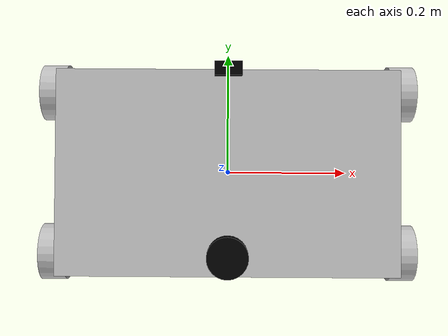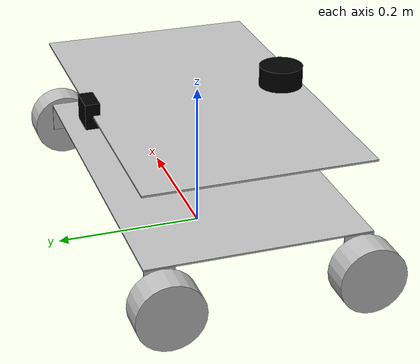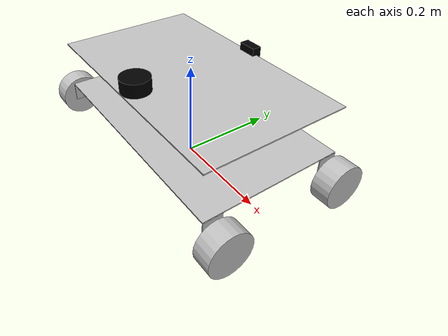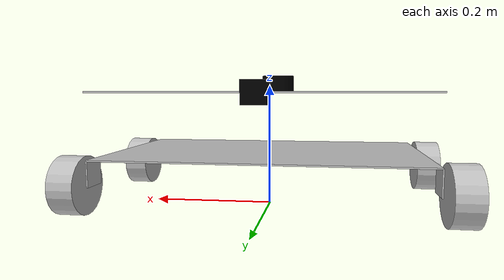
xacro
<?xml version="1.0"?>
<robot xmlns:xacro="http://www.ros.org/wiki/xacro" name="amr">
    <xacro:include filename="inertial.urdf.xacro"/>
    <xacro:include filename="amr_core.urdf.xacro"/>
    <xacro:include filename="amr_lidar.urdf.xacro"/>
    <xacro:include filename="amr_camera.urdf.xacro"/>
    <xacro:include filename="amr_gazebo.urdf.xacro"/>

</robot>

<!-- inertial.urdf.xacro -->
<robot xmlns:xacro="http://www.ros.org/wiki/xacro">
    <xacro:macro name="box" params="m l w h xyz rpy">
        <inertial>
            <mass value="${m}"/>
            <origin xyz="${xyz}" rpy="${rpy}"/>
            <inertia
                ixx="${1/12 * m * (h*h + l*l)}" ixy="0.0" ixz="0.0" iyy="${1/12 * m * (h*h + w*w)}" iyz="0.0" izz="${1/12 * m * (w*w + l*l)}"
            />
        </inertial>
    </xacro:macro>

    <xacro:macro name="cylinder" params="m r h xyz rpy">
        <inertial>
            <mass value="${m}"/>
            <origin xyz="${xyz}" rpy="${rpy}"/>
            <inertia
                ixx="${1/12 * m * (3*(r*r) + h*h)}" ixy="0.0" ixz="0.0" iyy="${1/12 * m * (3*(r*r) + h*h)}" iyz="0.0" izz="${1/2 * m * r}"
            />
        </inertial>
    </xacro:macro>
</robot>

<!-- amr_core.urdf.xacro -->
<robot xmlns:xacro="http://www.ros.org/wiki/xacro" name="AMR" >

    <xacro:property name="chassis_length" value="0.5"/>

    <xacro:property name="chassis_width" value="0.3"/>
    <xacro:property name="chassis_height" value="0.0025"/>

    <xacro:property name="wheel_radius" value="0.045"/>
    <xacro:property name="wheel_length" value="0.04"/>
    <xacro:property name="top_offset" value="0.1"/>

    <xacro:property name="bracket_length" value="0.04"/>

    <xacro:property name="bracket_width" value="0.04"/>
    <xacro:property name="bracket_height" value="0.002"/>

    <xacro:property name="wheel_offset" value="0.01"/>

    <material name="silver">
        <color rgba="0.75 0.75 0.75 1.0"/>
    </material>
    <material name="black">
        <color rgba="0.75 0.75 0.75 1.0"/>
    </material>
<link name="base_link"/>

<joint name="world" type="fixed">
    <parent link="base_link"/>
    <child link="chassis_base"/>
    <origin xyz="0.0 0.0 ${wheel_radius*2}" rpy="0.0 0.0 0.0"/>
</joint>

<link name="chassis_base">
    <visual>
        <geometry>
            <box size="${chassis_length} ${chassis_width} ${chassis_height}"/>
        </geometry>
        <origin xyz="0.0 0.0 0.0" rpy="0.0 0.0 0.0"/>
        <material name= "silver"/>
    </visual>
    <collision>
        <geometry>
            <box size="${chassis_length} ${chassis_width} ${chassis_height}"/>
        </geometry>
        <origin xyz="0.0 0.0 0.0" rpy="0.0 0.0 0.0"/>
    </collision>
    <xacro:box m="1.0125" l="${chassis_length}" w="${chassis_width}" h="${chassis_height}"
    xyz="0.0 0.0 0.0" rpy="0.0 0.0 0.0"/>

</link>

<link name="chassis_top">
    <visual>
        <geometry>
            <box size="${chassis_length} ${chassis_width} ${chassis_height}"/>
        </geometry>
        <origin xyz="0.0 0.0 0.0" rpy="0.0 0.0 0.0"/>
        <material name= "silver"/>
    </visual>
    <collision>
        <geometry>
            <box size="${chassis_length} ${chassis_width} ${chassis_height}"/>
        </geometry>
        <origin xyz="0.0 0.0 0.0" rpy="0.0 0.0 0.0"/>
    </collision>
    <xacro:box m="1.0125" l="${chassis_length}" w="${chassis_width}" h="${chassis_height}"
    xyz="0.0 0.0 0.0" rpy="0.0 0.0 0.0"/>
</link>

    <joint name="base_top_joint" type="fixed">
        <parent link="chassis_base"/>
        <child link="chassis_top"/>
        <origin xyz="0.0 0.0 ${top_offset}" rpy="0.0 0.0 0.0"/>
    </joint>

    <link name="right_front_bracket_link">
        <visual>
            <geometry>
                <box size="${bracket_length} ${bracket_width} ${bracket_height}"/>
            </geometry>
            <origin xyz="${bracket_length/2} 0.0 0.0" rpy="0.0 0.0 0.0"/>
            <material name="black"/>
        </visual>
        <collision>
            <geometry>
                <box size="${bracket_length} ${bracket_width} ${bracket_height}"/>
            </geometry>
            <origin xyz="${bracket_length/2} 0.0 0.0" rpy="0.0 0.0 0.0"/>
        </collision>
        <xacro:box m="0.02" l="${bracket_length}" w="${bracket_width}" h="${bracket_height}"
         xyz="${bracket_length/2} 0.0 0.0" rpy="0.0 0.0 0.0"/>
    </link>

    <joint name="base_right_front_bracket_joint" type="fixed">
        <parent link="chassis_base"/>
        <child link="right_front_bracket_link"/>
        <origin xyz="${chassis_length/2} ${chassis_width/2 - bracket_length/2} 0" rpy="0 ${pi/2} 0"/>
    </joint>

    <link name="front_right_wheel_link">
        <visual>
            <geometry>
                <cylinder radius="${wheel_radius}" length="${wheel_length}"/>
            </geometry>
            <origin xyz="0.0 0.0 ${wheel_length/2}" rpy="0.0 0.0 0.0"/>
            <material name="black"/>
        </visual>
        <collision>
            <geometry>
                <cylinder radius="${wheel_radius}" length="${wheel_length}"/>
            </geometry>
            <origin xyz="0.0 0.0 ${wheel_length/2}" rpy="0.0 0.0 0.0"/>
        </collision>
        <xacro:cylinder m ="0.3" r="${wheel_radius}" h = "${wheel_length}"
        xyz="0.0 0.0 ${wheel_length/2}" rpy="0.0 0.0 0.0"/>
    </link>

    <joint name="base_front_right_wheel_joint" type="continuous">
        <parent link="right_front_bracket_link"/>
        <child link="front_right_wheel_link"/>
        <axis xyz="0 0 1"/>
        <origin xyz="${bracket_length} 0.0 ${wheel_offset}" rpy="0.0 0.0 0.0"/>

    </joint>

    <link name="right_back_bracket_link">
        <visual>
            <geometry>
                <box size="${bracket_length} ${bracket_width} ${bracket_height}"/>
            </geometry>
            <origin xyz="${bracket_length/2} 0.0 0.0" rpy="0.0 0.0 0.0"/>
            <material name="black"/>
        </visual>
        <collision>
            <geometry>
                <box size="${bracket_length} ${bracket_width} ${bracket_height}"/>
            </geometry>
            <origin xyz="${bracket_length/2} 0.0 0.0" rpy="0.0 0.0 0.0"/>
        </collision>
        <xacro:box m="0.02" l="${bracket_length}" w="${bracket_width}" h="${bracket_height}"
        xyz="${bracket_length/2} 0.0 0.0" rpy="0.0 0.0 0.0"/>
    </link>

    <joint name="base_right_back_bracket_joint" type="fixed">
        <parent link="chassis_base"/>
        <child link="right_back_bracket_link"/>
        <origin xyz="${chassis_length/2} ${-chassis_width/2 + bracket_length/2} 0" rpy="0 ${pi/2} 0"/>
    </joint>

    <link name="back_right_wheel_link">
        <visual>
            <geometry>
                <cylinder radius="${wheel_radius}" length="${wheel_length}"/>
            </geometry>
            <origin xyz="0.0 0.0 ${wheel_length/2}" rpy="0.0 0.0 0.0"/>
            <material name="black"/>
        </visual>
        <collision>
            <geometry>
                <cylinder radius="${wheel_radius}" length="${wheel_length}"/>
            </geometry>
            <origin xyz="0.0 0.0 ${wheel_length/2}" rpy="0.0 0.0 0.0"/>
        </collision>
        <xacro:cylinder m ="0.3" r="${wheel_radius}" h = "${wheel_length}"
        xyz="0.0 0.0 ${wheel_length/2}" rpy="0.0 0.0 0.0"/>
    </link>

    <joint name="base_back_right_wheel_joint" type="continuous">
        <parent link="right_back_bracket_link"/>
        <child link="back_right_wheel_link"/>
        <axis xyz="0 0 1"/>
        <origin xyz="${bracket_length} 0.0 ${wheel_offset}" rpy="0.0 0.0 0.0"/>

    </joint>

    <link name="left_front_bracket_link">
        <visual>
            <geometry>
                <box size="${bracket_length} ${bracket_width} ${bracket_height}"/>
            </geometry>
            <origin xyz="${bracket_length/2} 0.0 0.0" rpy="0.0 0.0 0.0"/>
            <material name="black"/>
        </visual>
        <collision>
            <geometry>
                <box size="${bracket_length} ${bracket_width} ${bracket_height}"/>
            </geometry>
            <origin xyz="${bracket_length/2} 0.0 0.0" rpy="0.0 0.0 0.0"/>
        </collision>
        <xacro:box m="0.02" l="${bracket_length}" w="${bracket_width}" h="${bracket_height}"
        xyz="${bracket_length/2} 0.0 0.0" rpy="0.0 0.0 0.0"/>
    </link>

    <joint name="base_left_front_bracket_joint" type="fixed">
        <parent link="chassis_base"/>
        <child link="left_front_bracket_link"/>
        <origin xyz="${-chassis_length/2} ${chassis_width/2 - bracket_length/2} 0" rpy="0 ${pi/2} 0"/>
    </joint>

    <link name="front_left_wheel_link">
        <visual>
            <geometry>
                <cylinder radius="${wheel_radius}" length="${wheel_length}"/>
            </geometry>
            <origin xyz="0.0 0.0 ${-wheel_length/2}" rpy="0.0 0.0 0.0"/>
            <material name="black"/>
        </visual>
        <collision>
            <geometry>
                <cylinder radius="${wheel_radius}" length="${wheel_length}"/>
            </geometry>
            <origin xyz="0.0 0.0 ${-wheel_length/2}" rpy="0.0 0.0 0.0"/>
        </collision>
        <xacro:cylinder m ="0.3" r="${wheel_radius}" h = "${wheel_length}"
        xyz="0.0 0.0 ${-wheel_length/2}" rpy="0.0 0.0 0.0"/>
    </link>

    <joint name="base_front_left_wheel_joint" type="continuous">
        <parent link="left_front_bracket_link"/>
        <child link="front_left_wheel_link"/>
        <axis xyz="0 0 1"/>
        <origin xyz="${bracket_length} 0.0 ${-wheel_offset}" rpy="0.0 0.0 0.0"/>

    </joint>

    <link name="left_back_bracket_link">
        <visual>
            <geometry>
                <box size="${bracket_length} ${bracket_width} ${bracket_height}"/>
            </geometry>
            <origin xyz="${bracket_length/2} 0.0 0.0" rpy="0.0 0.0 0.0"/>
            <material name="black"/>
        </visual>
        <collision>
            <geometry>
                <box size="${bracket_length} ${bracket_width} ${bracket_height}"/>
            </geometry>
            <origin xyz="${bracket_length/2} 0.0 0.0" rpy="0.0 0.0 0.0"/>
        </collision>
        <xacro:box m="0.02" l="${bracket_length}" w="${bracket_width}" h="${bracket_height}"
        xyz="${bracket_length/2} 0.0 0.0" rpy="0.0 0.0 0.0"/>
    </link>

    <joint name="base_left_back_bracket_joint" type="fixed">
        <parent link="chassis_base"/>
        <child link="left_back_bracket_link"/>
        <origin xyz="${-chassis_length/2} ${-chassis_width/2 + bracket_length/2} 0" rpy="0 ${pi/2} 0"/>
    </joint>

    <link name="back_left_wheel_link">
        <visual>
            <geometry>
                <cylinder radius="${wheel_radius}" length="${wheel_length}"/>
            </geometry>
            <origin xyz="0.0 0.0 ${-wheel_length/2}" rpy="0.0 0.0 0.0"/>
            <material name="black"/>
        </visual>
        <collision>
            <geometry>
                <cylinder radius="${wheel_radius}" length="${wheel_length}"/>
            </geometry>
            <origin xyz="0.0 0.0 ${-wheel_length/2}" rpy="0.0 0.0 0.0"/>
        </collision>
        <xacro:cylinder m ="0.3" r="${wheel_radius}" h = "${wheel_length}"
        xyz="0.0 0.0 ${-wheel_length/2}" rpy="0.0 0.0 0.0"/>
    </link>

    <joint name="base_back_left_wheel_joint" type="continuous">
        <parent link="left_back_bracket_link"/>
        <child link="back_left_wheel_link"/>
        <axis xyz="0 0 1"/>
        <origin xyz="${bracket_length} 0.0 ${-wheel_offset}" rpy="0.0 0.0 0.0"/>

    </joint>

</robot>

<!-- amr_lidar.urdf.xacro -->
<robot xmlns:xacro="http://www.ros.org/wiki/xacro">
    <xacro:property name="lidar_radius" value="0.03"/>

    <xacro:property name="lidar_length" value="0.03"/>
    <link name="laser_scan">
        <visual>
            <geometry>
                <cylinder radius="${lidar_radius}" length="${lidar_length}"/>
            </geometry>
            <origin xyz="0.0 ${lidar_radius} ${lidar_length/2}" rpy="0.0 0.0 0.0"/>
            <material name="black">
                <color rgba="0.0 0.0 0.0 1.0"/>
            </material>
        </visual>
        <collision>
            <geometry>
                <cylinder radius="${lidar_radius}" length="${lidar_length}"/>
            </geometry>
            <origin xyz="0.0 0.0 0.0" rpy="0.0 0.0 0.0"/>
        </collision>
        <xacro:cylinder m="1.0" r ="0.07" h ="0.05"
            xyz="0.0 0.0 0.0" rpy="0.0 0.0 0.0"/>
    </link>

    <joint name="base_top_laser_scan_joint" type="fixed">
        <origin xyz="0.0 ${-chassis_width/2} 0.0" rpy="0.0 0.0 0.0"/>

        <parent link="chassis_top"/>
        <child link="laser_scan"/>
    </joint>
</robot>

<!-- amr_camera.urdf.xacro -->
<robot xmlns:xacro="http://www.ros.org/wiki/xacro">
<xacro:property name="camera_length" value="0.04"/>
<xacro:property name="camera_width" value="0.02"/>
<xacro:property name="camera_height" value="0.035"/>
    <link name="camera_link">
        <visual>
            <geometry>
                <box size="${camera_length} ${camera_width} ${camera_height}"/>
            </geometry>
            <origin xyz="0.0 0.0 0.0" rpy="0.0 0.0 ${pi/2}"/>
            <material name="black">
                <color rgba="0.0 0.0 0.0 1.0"/>
            </material>
        </visual>
        <collision>
            <geometry>
                <box size="${camera_length} ${camera_width} ${camera_height}"/>
            </geometry>
            <origin xyz="0.0 0.0 0.0" rpy="0.0 0.0 ${pi/2}"/>
        </collision>
        <xacro:box m="0.2" l="0.02" w="0.02" h="0.035" xyz="0.0 0.0 0.0" rpy="0.0 0.0 ${pi/2}"/>
    </link>
    <joint name="base_top_camera_joint" type="fixed">
       <origin xyz="0.0 ${chassis_width/2} 0.0" rpy="0.0 0.0 ${pi/2}"/>

        <parent link="chassis_top"/>
        <child link="camera_link"/>
    </joint>
    <link name="camera_link_optical"/>

    <joint name="camera_optical_joint" type="fixed">
        <parent link="camera_link"/>
        <child link="camera_link_optical"/>
        <origin xyz="0 0 0" rpy="-1.57 0 -1.57"/>
    </joint>
</robot>
